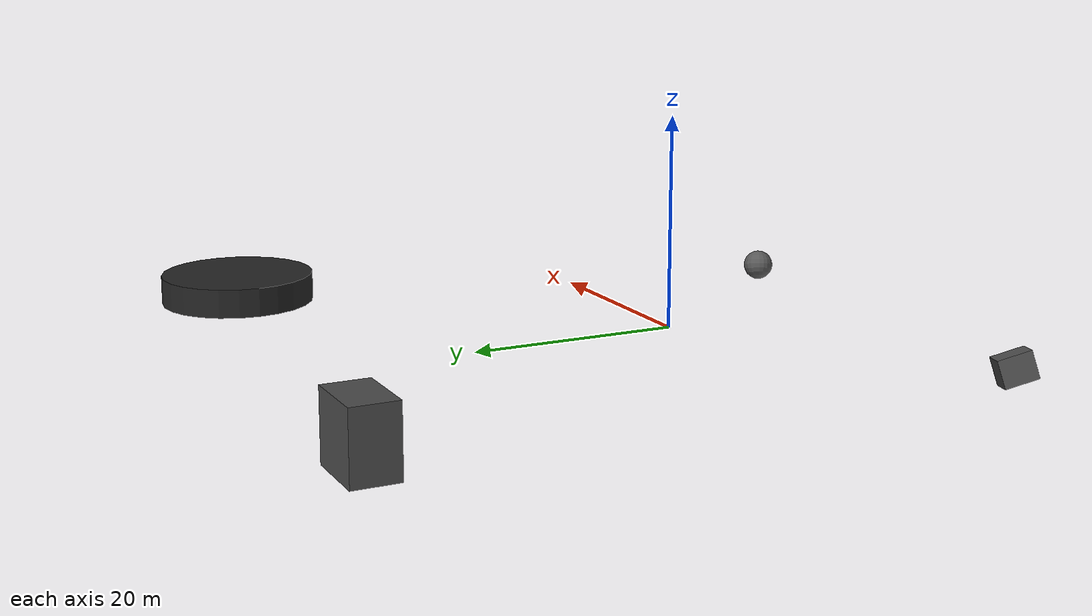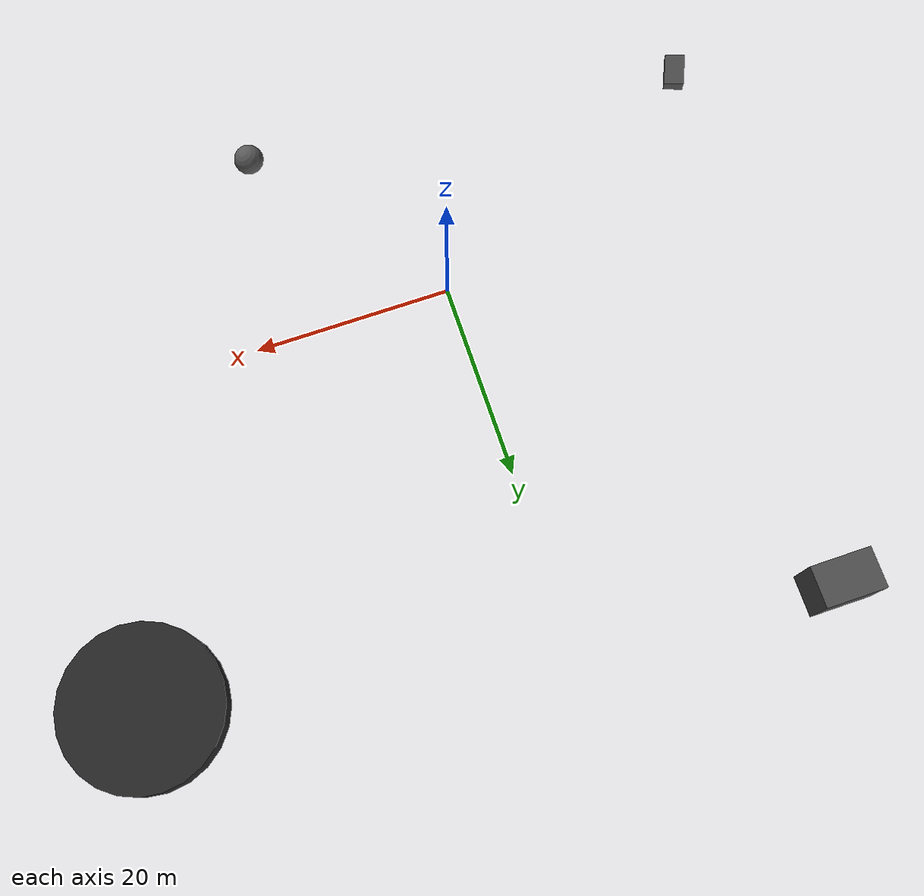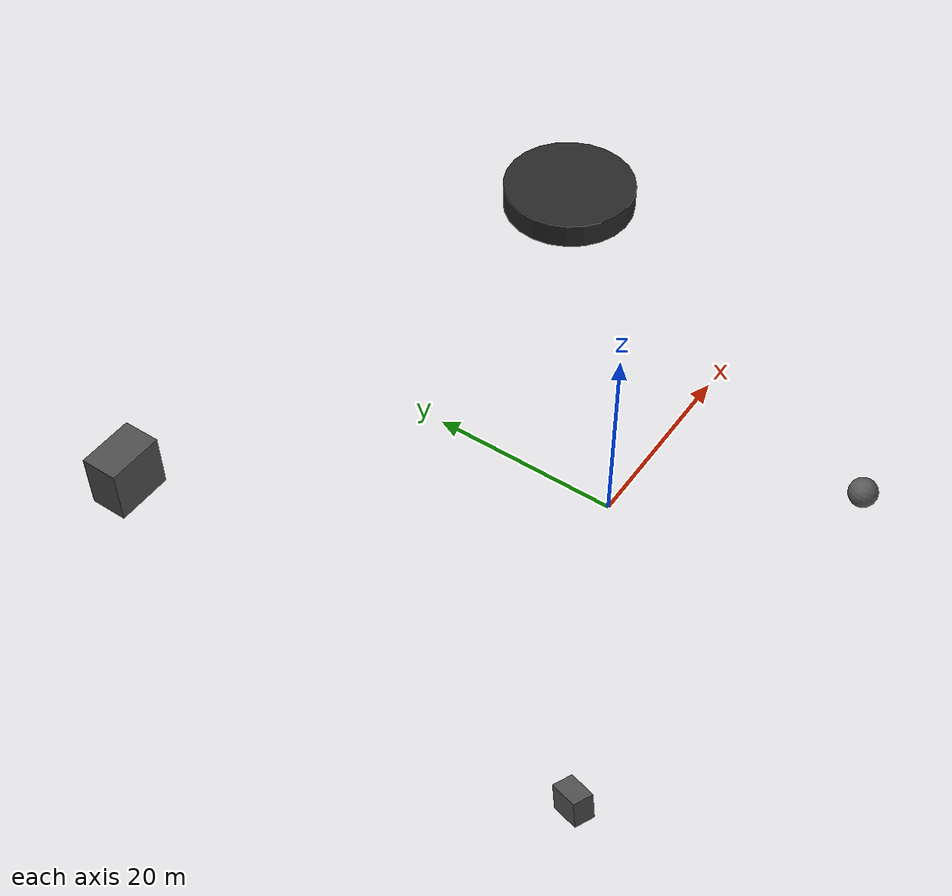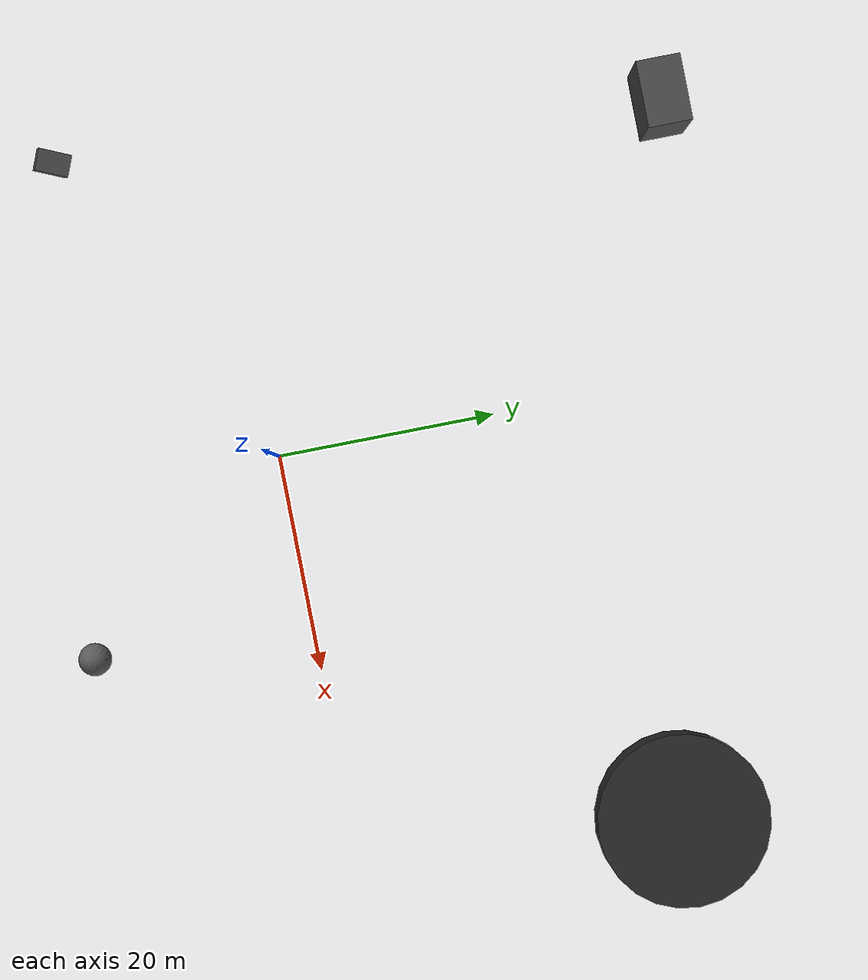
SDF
<sdf version="1.7">
 <world name="professional_lunar_environment">
  <physics name="lunar_physics" default="1" type="ode">
   <gravity>0 0 -1.62</gravity>
   <ode>
    <solver><type>quick</type><iters>150</iters><sor>1.4</sor></solver>
    <constraints>
     <cfm>1e-6</cfm>
     <erp>0.2</erp>
     <contact_max_correcting_vel>1000</contact_max_correcting_vel>
     <contact_surface_layer>0.0001</contact_surface_layer>
    </constraints>
   </ode>
   <real_time_update_rate>1000</real_time_update_rate>
   <max_step_size>0.0005</max_step_size>
  </physics>
  <light name="primary_sun" type="directional">
   <pose>300 150 400 0 0 0</pose>
   <diffuse>2.2 2.2 2.0 1</diffuse>
   <specular>1.8 1.8 1.6 1</specular>
   <attenuation>
    <range>2000</range>
    <constant>0.8</constant>
    <linear>0.005</linear>
    <quadratic>0.0005</quadratic>
   </attenuation>
   <direction>-0.6 -0.4 -0.8</direction>
  </light>
  <light name="earth_shine" type="directional">
   <cast_shadows>0</cast_shadows>
   <pose>-200 -100 200 0 0 0</pose>
   <diffuse>0.1 0.15 0.2 1</diffuse>
   <direction>0.4 0.3 -0.5</direction>
  </light>
  <scene>
   <ambient>0.02 0.02 0.02 1</ambient>
   <background>0.0 0.0 0.0 1</background>
   <shadows>1</shadows>
   <fog>
    <color>0.0 0.0 0.0 1</color>
    <type>linear</type>
    <start>2000</start>
    <end>5000</end>
    <density>0.0</density>
   </fog>
   <sky>
    <time>12</time>
    <sunrise>0</sunrise>
    <sunset>24</sunset>
    <clouds><speed>0</speed><direction>0</direction><humidity>0</humidity></clouds>
   </sky>
  </scene>
  <model name="crater_field_1">
   <static>true</static>
   <pose>40 30 0 0 0 0</pose>
   <link name="crater_link">
    <collision name="collision">
     <geometry><cylinder><radius>8</radius><length>3</length></cylinder></geometry>
    </collision>
    <visual name="visual">
     <pose>0 0 -1.5 0 0 0</pose>
     <geometry><cylinder><radius>8</radius><length>3</length></cylinder></geometry>
     <material>
      <ambient>0.08 0.08 0.08 1</ambient>
      <diffuse>0.15 0.15 0.15 1</diffuse>
      <specular>0.02 0.02 0.02 1</specular>
     </material>
    </visual>
   </link>
  </model>
  <model name="boulder_field">
   <static>true</static>
   <pose>-25 40 3 0 0 0</pose>
   <link name="boulder_link">
    <collision name="collision"><geometry><box><size>6 4 6</size></box></geometry></collision>
    <visual name="visual">
     <geometry><box><size>6 4 6</size></box></geometry>
     <material>
      <ambient>0.2 0.2 0.2 1</ambient>
      <diffuse>0.3 0.3 0.3 1</diffuse>
      <specular>0.1 0.1 0.1 1</specular>
     </material>
    </visual>
   </link>
  </model>
  <model name="rock_scatter_1">
   <static>true</static>
   <pose>15 -20 1 0.3 0.1 0.8</pose>
   <link name="rock_link">
    <collision name="collision"><geometry><sphere><radius>1.5</radius></sphere></geometry></collision>
    <visual name="visual">
     <geometry><sphere><radius>1.5</radius></sphere></geometry>
     <material><ambient>0.25 0.25 0.25 1</ambient><diffuse>0.35 0.35 0.35 1</diffuse></material>
    </visual>
   </link>
  </model>
  <model name="rock_scatter_2">
   <static>true</static>
   <pose>-30 -15 2 0.1 0.3 1.2</pose>
   <link name="rock_link">
    <collision name="collision"><geometry><box><size>3 2 2.5</size></box></geometry></collision>
    <visual name="visual">
     <geometry><box><size>3 2 2.5</size></box></geometry>
     <material><ambient>0.22 0.22 0.22 1</ambient><diffuse>0.32 0.32 0.32 1</diffuse></material>
    </visual>
   </link>
  </model>
  <plugin name="gazebo_ros_state" filename="libgazebo_ros_state.so">
   <ros><namespace>/professional_gazebo</namespace></ros>
   <update_rate>20.0</update_rate>
  </plugin>
  <plugin name="gazebo_ros_factory" filename="libgazebo_ros_factory.so">
   <ros><namespace>/professional_gazebo</namespace></ros>
  </plugin>
 </world>
</sdf>
